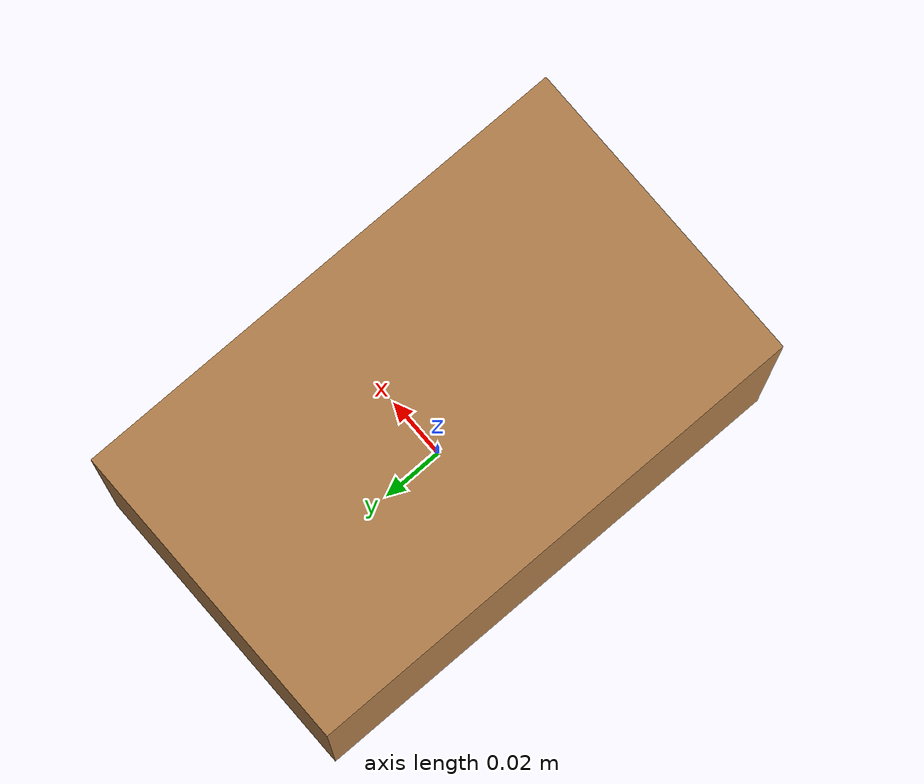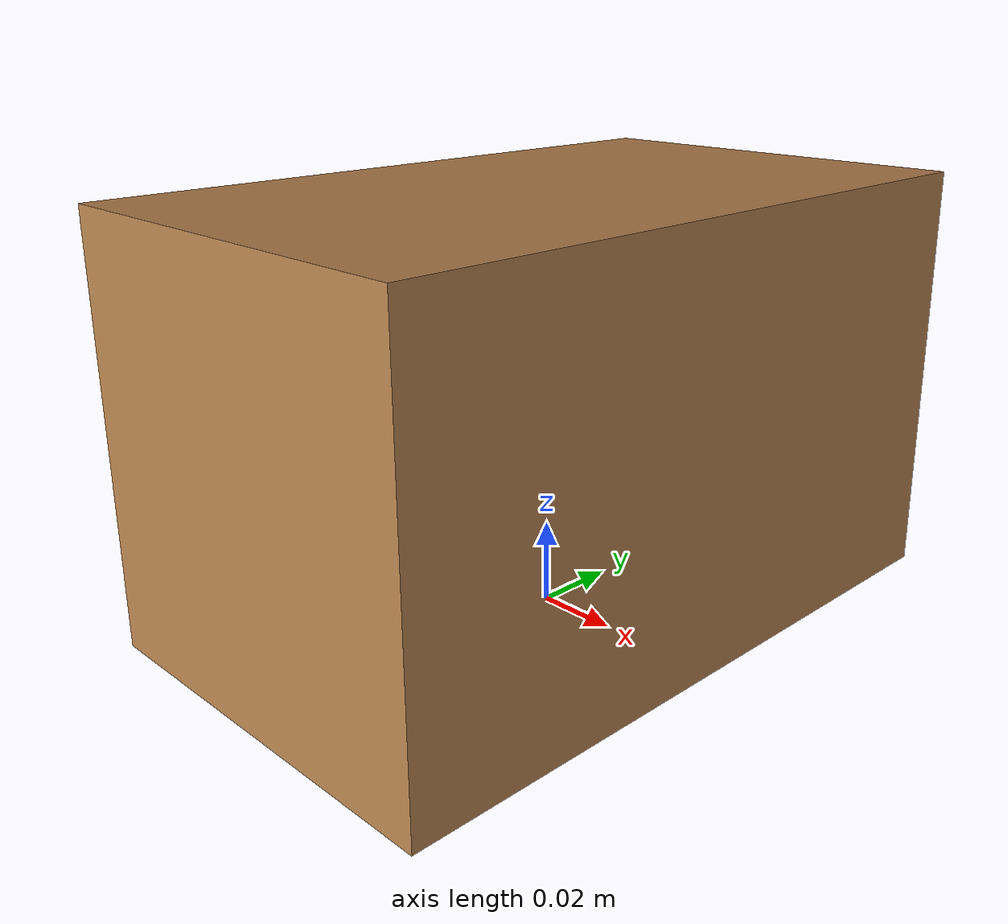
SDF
<?xml version="1.0" ?>
<sdf version="1.5">
  <model name="wood_cube_10cm">
    <link name="link">
      <pose>0 0 0.05 0 0 0</pose>
      <inertial>
        <mass>0.5167</mass>
        <inertia>
          <ixx>0.0008611666666666669</ixx>
          <ixy>0</ixy>
          <ixz>0</ixz>
          <iyy>0.0008611666666666669</iyy>
          <iyz>0</iyz>
          <izz>0.0008611666666666669</izz>
        </inertia>
      </inertial>

      <collision name="collision">
        <geometry>
          <box>
            <size>0.1 0.165 0.1</size>
          </box>
        </geometry>
        <surface>
          <contact>
            <ode>
              <max_vel>0.1</max_vel>
              <min_depth>0.001</min_depth>
            </ode>
          </contact>
        </surface>
      </collision>

      <visual name="visual">
        <geometry>
          <box>
            <size>0.1 0.165 0.1</size>
          </box>
        </geometry>
        <material>
          <script>
            <uri>file://media/materials/scripts/gazebo.material</uri>
            <name>Gazebo/Wood</name>
          </script>
        </material>
      </visual>

    </link>
  </model>
</sdf>
